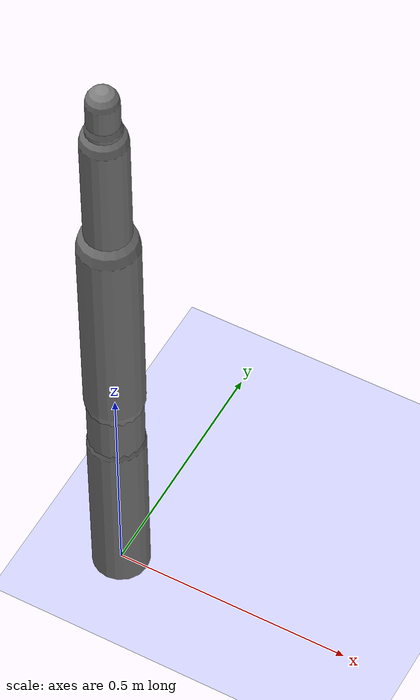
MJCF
<?xml version='1.0' encoding='UTF-8'?>
<mujoco model="robot_model">
  <worldbody>
    <light name="light" pos="0 -3 10" dir="0 0.5 -1" diffuse=".8 .8 .8" specular="0.1 0.1 0.1"/>
    <geom name="floor" type="plane" size="10.0 10.0 0.1" pos="0 0 0" rgba="0.8 0.8 1 1" contype="2" conaffinity="1"/>
    <body name="limb0" pos="0 0 0">
      <geom type="capsule" fromto="0 0 0 0 0 0.3873882168320604" size="0.05851527275539045" density="855.2501849918699" contype="1" conaffinity="2"/>
      <site type="sphere" size="0.01" name="limb0_site0" pos="0 0 0.37011576869851015"/>
      <site type="sphere" size="0.01" name="limb0_site1" pos="0 0 0.18437543453853222"/>
      <freejoint name="limb0_root"/>
      <body name="limb1" pos="0 0 0.37011576869851015">
        <geom type="capsule" fromto="0 0 0 0 0 0.37552403964599423" size="0.05588367011848859" density="1137.2918468265389" contype="1" conaffinity="2"/>
        <site type="sphere" size="0.01" name="limb1_site0" pos="0 0 0.3682043157441394"/>
        <site type="sphere" size="0.01" name="limb1_site1" pos="0 0 0.14970958005487703"/>
        <body name="limb2" pos="0 0 0.3682043157441394">
          <geom type="capsule" fromto="0 0 0 0 0 0.5" size="0.045329815490319995" density="1017.2531489540214" contype="1" conaffinity="2"/>
          <site type="sphere" size="0.01" name="limb2_site0" pos="0 0 0.4086911084967624"/>
          <site type="sphere" size="0.01" name="limb2_site1" pos="0 0 0.32495363862035115"/>
          <body name="limb3" pos="0 0 0.4086911084967624">
            <geom type="capsule" fromto="0 0 0 0 0 0.19166066799868264" size="0.0314707546179414" density="956.2416848734547" contype="1" conaffinity="2"/>
            <joint name="joint_limb2_limb3_0" type="hinge" axis="0 1 0" range="-39.54825129765963 39.54825129765963" damping="5.0"/>
          </body>
          <body name="limb4" pos="0 0 0.32495363862035115">
            <geom type="capsule" fromto="0 0 0 0 0 0.2102868528065015" size="0.03451406520881031" density="566.487314585425" contype="1" conaffinity="2"/>
            <joint name="joint_limb2_limb4_0" type="hinge" axis="0 1 0" range="-97.4408151263812 97.4408151263812" damping="5.0"/>
          </body>
          <joint name="joint_limb1_limb2_0" type="hinge" axis="0 1 0" range="-60.504894728636025 60.504894728636025" damping="5.0"/>
        </body>
        <body name="limb5" pos="0 0 0.14970958005487703">
          <geom type="capsule" fromto="0 0 0 0 0 0.4395241174791506" size="0.06" density="835.0249507936275" contype="1" conaffinity="2"/>
          <joint name="joint_limb1_limb5_0" type="hinge" axis="0 0 1" range="-72.8282440056993 72.8282440056993" damping="5.0"/>
        </body>
        <joint name="joint_limb0_limb1_0" type="hinge" axis="0 1 0" range="-120.0 120.0" damping="5.0"/>
      </body>
      <body name="limb6" pos="0 0 0.18437543453853222">
        <geom type="capsule" fromto="0 0 0 0 0 0.43647014061798706" size="0.041248644928393044" density="789.216346642524" contype="1" conaffinity="2"/>
        <joint name="joint_limb0_limb6_0" type="hinge" axis="0 0 1" range="-45.82744000775369 45.82744000775369" damping="5.0"/>
      </body>
    </body>
  </worldbody>
  <actuator>
    <position name="position_actuator_joint_limb0_limb1_0" joint="joint_limb0_limb1_0" gear="2.0" inheritrange="1" forcerange="-25.107791480827572 25.107791480827572" forcelimited="true" kp="100.0"/>
    <position name="position_actuator_joint_limb1_limb2_0" joint="joint_limb1_limb2_0" gear="1.855224638398584" inheritrange="1" forcerange="-18.401183504925072 18.401183504925072" forcelimited="true" kp="100.0"/>
    <position name="position_actuator_joint_limb2_limb3_0" joint="joint_limb2_limb3_0" gear="1.9577561249166682" inheritrange="1" forcerange="-3.4754816031092273 3.4754816031092273" forcelimited="true" kp="100.0"/>
    <position name="position_actuator_joint_limb2_limb4_0" joint="joint_limb2_limb4_0" gear="0.9592737602053503" inheritrange="1" forcerange="-2.71681710423994 2.71681710423994" forcelimited="true" kp="100.0"/>
    <position name="position_actuator_joint_limb1_limb5_0" joint="joint_limb1_limb5_0" gear="0.8397505935235454" inheritrange="1" forcerange="-24.531694271366895 24.531694271366895" forcelimited="true" kp="100.0"/>
    <position name="position_actuator_joint_limb0_limb6_0" joint="joint_limb0_limb6_0" gear="0.7342032220860385" inheritrange="1" forcerange="-10.36646920093445 10.36646920093445" forcelimited="true" kp="100.0"/>
  </actuator>
</mujoco>
